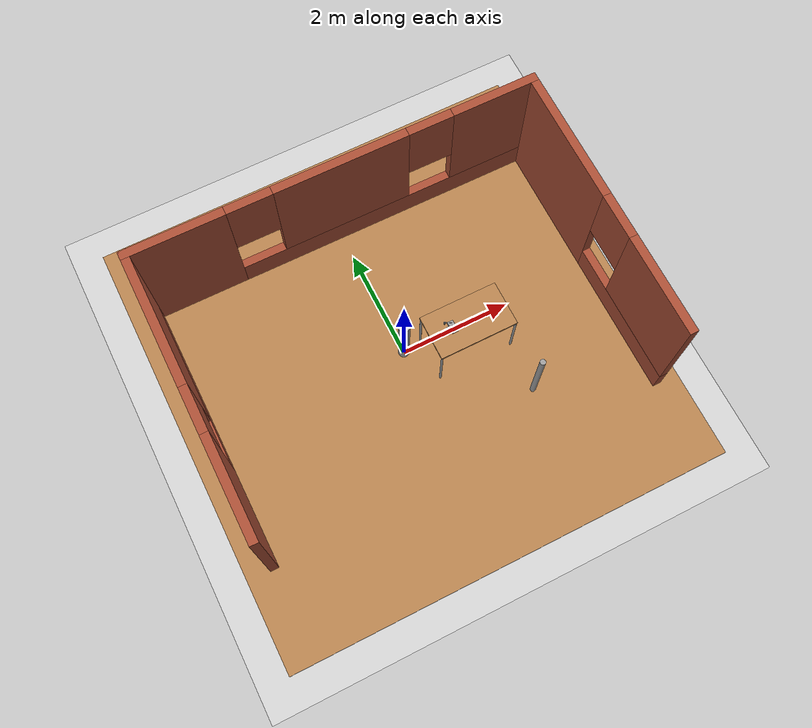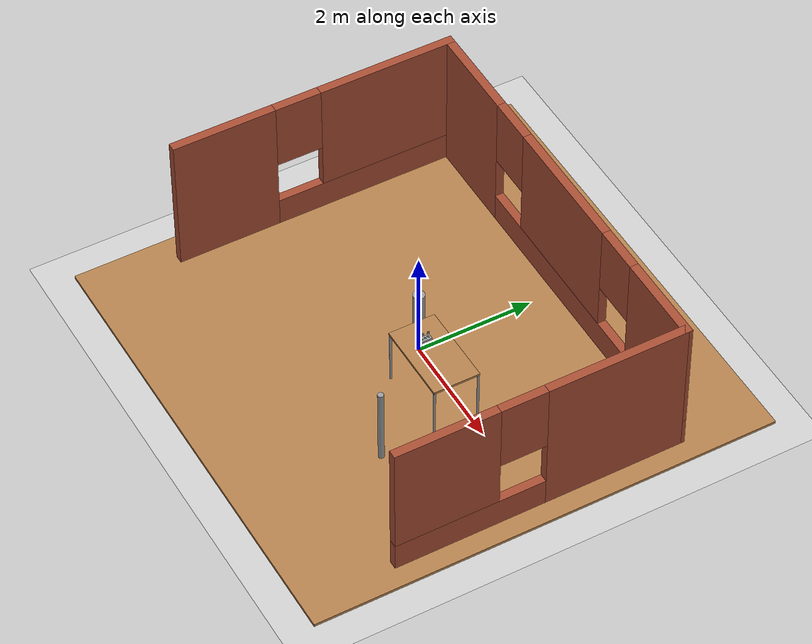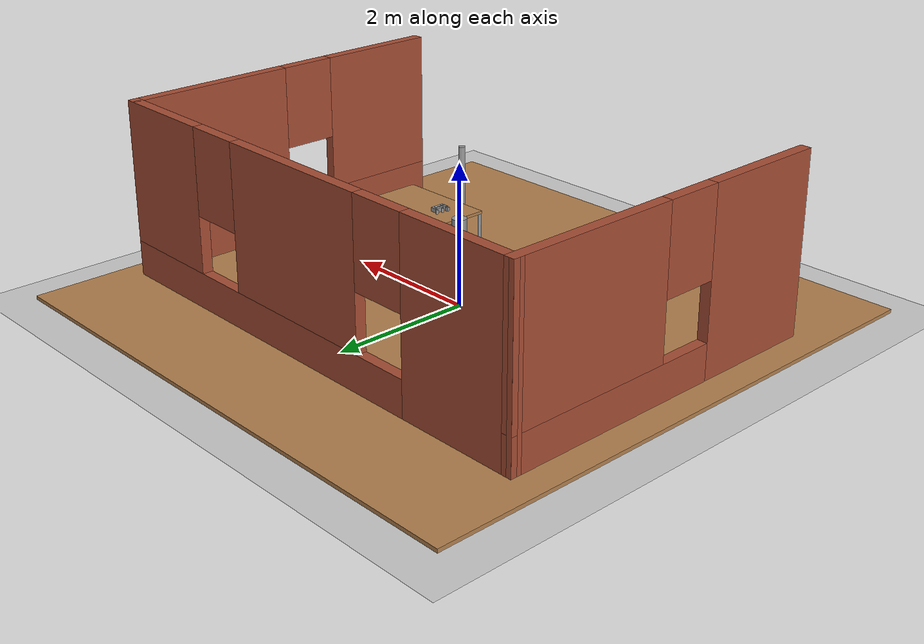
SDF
<sdf version="1.6">
 <world name="default">
  <light name="sun" type="directional">
   <pose>0 0 10 0 -0 0</pose>
   <diffuse>0.8 0.8 0.8 1</diffuse>
   <specular>0.1 0.1 0.1 1</specular>
   <attenuation>
    <range>1000</range>
    <constant>0.9</constant>
    <linear>0.01</linear>
    <quadratic>0.001</quadratic>
   </attenuation>
   <direction>-0.5 0.5 -1</direction>
  </light>
  <model name="ground_plane">
   <static>1</static>
   <link name="link">
    <collision name="collision">
     <geometry><plane><normal>0 0 1</normal><size>100 100</size></plane></geometry>
     <surface><friction><ode><mu>100</mu><mu2>50</mu2></ode></friction></surface>
    </collision>
    <visual name="visual">
     <cast_shadows>0</cast_shadows>
     <geometry><plane><normal>0 0 1</normal><size>100 100</size></plane></geometry>
     <material>
      <script><uri>file://media/materials/scripts/gazebo.material</uri><name>Gazebo/Grey</name></script>
     </material>
    </visual>
   </link>
  </model>
  <gravity>0 0 -9.8</gravity>
  <magnetic_field>6e-06 2.3e-05 -4.2e-05</magnetic_field>
  <atmosphere type="adiabatic"/>
  <physics name="default_physics" default="0" type="ode">
   <max_step_size>0.001</max_step_size>
   <real_time_factor>1</real_time_factor>
   <real_time_update_rate>1000</real_time_update_rate>
  </physics>
  <scene><ambient>0.4 0.4 0.4 1</ambient><background>0.7 0.7 0.7 1</background><shadows>1</shadows></scene>
  <spherical_coordinates>
   <surface_model>EARTH_WGS84</surface_model>
   <latitude_deg>0</latitude_deg>
   <longitude_deg>0</longitude_deg>
   <elevation>0</elevation>
   <heading_deg>0</heading_deg>
  </spherical_coordinates>
  <model name="floor">
   <link name="link">
    <pose>0 0 0.025 0 -0 0</pose>
    <inertial>
     <mass>80</mass>
     <inertia><ixx>1</ixx><ixy>0</ixy><ixz>0</ixz><iyy>1</iyy><iyz>0</iyz><izz>1</izz></inertia>
    </inertial>
    <visual name="visual">
     <geometry><box><size>8 8 0.05</size></box></geometry>
     <material>
      <script><uri>file://media/materials/scripts/gazebo.material</uri><name>Gazebo/Wood</name></script>
      <ambient>1 1 1 1</ambient>
      <diffuse>1 1 1 1</diffuse>
      <specular>0.2 0.2 0.2 1</specular>
      <emissive>0 0 0 1</emissive>
      <shader type="vertex"><normal_map>__default__</normal_map></shader>
     </material>
    </visual>
    <collision name="collision">
     <geometry><box><size>8 8 0.05</size></box></geometry>
     <surface>
      <friction>
       <ode><mu>1</mu><mu2>1</mu2><fdir1>0 0 0</fdir1><slip1>0</slip1><slip2>0</slip2></ode>
       <torsional>
        <coefficient>1</coefficient>
        <patch_radius>0</patch_radius>
        <surface_radius>0.01</surface_radius>
        <use_patch_radius>0</use_patch_radius>
        <ode><slip>0</slip></ode>
       </torsional>
      </friction>
      <bounce><restitution_coefficient>0</restitution_coefficient><threshold>1e+06</threshold></bounce>
      <contact>
       <collide_without_contact>0</collide_without_contact>
       <collide_without_contact_bitmask>1</collide_without_contact_bitmask>
       <collide_bitmask>1</collide_bitmask>
       <ode>
        <soft_cfm>0</soft_cfm>
        <soft_erp>0.2</soft_erp>
        <kp>100000</kp>
        <kd>100</kd>
        <max_vel>100</max_vel>
        <min_depth>0.001</min_depth>
       </ode>
       <bullet>
        <split_impulse>1</split_impulse>
        <split_impulse_penetration_threshold>-0.01</split_impulse_penetration_threshold>
        <soft_cfm>0</soft_cfm>
        <soft_erp>0.2</soft_erp>
        <kp>100000</kp>
        <kd>100</kd>
       </bullet>
      </contact>
     </surface>
    </collision>
   </link>
   <static>1</static>
  </model>
  <model name="workcell_building">
   <pose>0.03413 0.070717 0.05 0 -0 0</pose>
   <link name="Wall_0">
    <pose>-3.5548 0.033432 0 0 -0 1.5708</pose>
    <visual name="Wall_0_Visual_0">
     <pose>-1.60824 0 1.25 0 -0 0</pose>
     <geometry><box><size>1.78352 0.15 2.5</size></box></geometry>
     <material>
      <script><uri>file://media/materials/scripts/gazebo.material</uri><name>Gazebo/Bricks</name></script>
      <ambient>1 1 1 1</ambient>
     </material>
    </visual>
    <collision name="Wall_0_Collision_0">
     <geometry><box><size>1.78352 0.15 2.5</size></box></geometry>
     <pose>-1.60824 0 1.25 0 -0 0</pose>
    </collision>
    <visual name="Wall_0_Visual_1">
     <pose>0.891762 0 0.25 0 -0 0</pose>
     <geometry><box><size>3.21648 0.15 0.5</size></box></geometry>
     <material>
      <script><uri>file://media/materials/scripts/gazebo.material</uri><name>Gazebo/Bricks</name></script>
      <ambient>1 1 1 1</ambient>
     </material>
    </visual>
    <collision name="Wall_0_Collision_1">
     <geometry><box><size>3.21648 0.15 0.5</size></box></geometry>
     <pose>0.891762 0 0.25 0 -0 0</pose>
    </collision>
    <visual name="Wall_0_Visual_2">
     <pose>1.29176 0 1.5 0 -0 0</pose>
     <geometry><box><size>2.41648 0.15 2</size></box></geometry>
     <material>
      <script><uri>file://media/materials/scripts/gazebo.material</uri><name>Gazebo/Bricks</name></script>
      <ambient>1 1 1 1</ambient>
     </material>
    </visual>
    <collision name="Wall_0_Collision_2">
     <geometry><box><size>2.41648 0.15 2</size></box></geometry>
     <pose>1.29176 0 1.5 0 -0 0</pose>
    </collision>
    <visual name="Wall_0_Visual_3">
     <pose>-0.316476 0 1.9 0 -0 0</pose>
     <geometry><box><size>0.8 0.15 1.2</size></box></geometry>
     <material>
      <script><uri>file://media/materials/scripts/gazebo.material</uri><name>Gazebo/Bricks</name></script>
      <ambient>1 1 1 1</ambient>
     </material>
    </visual>
    <collision name="Wall_0_Collision_3">
     <geometry><box><size>0.8 0.15 1.2</size></box></geometry>
     <pose>-0.316476 0 1.9 0 -0 0</pose>
    </collision>
   </link>
   <link name="Wall_1">
    <pose>0 2.43809 0 0 0 -0.005723</pose>
    <visual name="Wall_1_Visual_0">
     <pose>-2.75725 0 1.25 0 -0 0</pose>
     <geometry><box><size>1.74511 0.15 2.5</size></box></geometry>
     <material>
      <script><uri>file://media/materials/scripts/gazebo.material</uri><name>Gazebo/Bricks</name></script>
      <ambient>1 1 1 1</ambient>
     </material>
    </visual>
    <collision name="Wall_1_Collision_0">
     <geometry><box><size>1.74511 0.15 2.5</size></box></geometry>
     <pose>-2.75725 0 1.25 0 -0 0</pose>
    </collision>
    <visual name="Wall_1_Visual_1">
     <pose>0.872557 0 0.25 0 -0 0</pose>
     <geometry><box><size>5.5145 0.15 0.5</size></box></geometry>
     <material>
      <script><uri>file://media/materials/scripts/gazebo.material</uri><name>Gazebo/Bricks</name></script>
      <ambient>1 1 1 1</ambient>
     </material>
    </visual>
    <collision name="Wall_1_Collision_1">
     <geometry><box><size>5.5145 0.15 0.5</size></box></geometry>
     <pose>0.872557 0 0.25 0 -0 0</pose>
    </collision>
    <visual name="Wall_1_Visual_2">
     <pose>0.098372 0 1.5 0 -0 0</pose>
     <geometry><box><size>2.36613 0.15 2</size></box></geometry>
     <material>
      <script><uri>file://media/materials/scripts/gazebo.material</uri><name>Gazebo/Bricks</name></script>
      <ambient>1 1 1 1</ambient>
     </material>
    </visual>
    <collision name="Wall_1_Collision_2">
     <geometry><box><size>2.36613 0.15 2</size></box></geometry>
     <pose>0.098372 0 1.5 0 -0 0</pose>
    </collision>
    <visual name="Wall_1_Visual_3">
     <pose>2.85562 0 1.5 0 -0 0</pose>
     <geometry><box><size>1.54837 0.15 2</size></box></geometry>
     <material>
      <script><uri>file://media/materials/scripts/gazebo.material</uri><name>Gazebo/Bricks</name></script>
      <ambient>1 1 1 1</ambient>
     </material>
    </visual>
    <collision name="Wall_1_Collision_3">
     <geometry><box><size>1.54837 0.15 2</size></box></geometry>
     <pose>2.85562 0 1.5 0 -0 0</pose>
    </collision>
    <visual name="Wall_1_Visual_4">
     <pose>-1.4847 0 1.9 0 -0 0</pose>
     <geometry><box><size>0.8 0.15 1.2</size></box></geometry>
     <material>
      <script><uri>file://media/materials/scripts/gazebo.material</uri><name>Gazebo/Bricks</name></script>
      <ambient>1 1 1 1</ambient>
     </material>
    </visual>
    <collision name="Wall_1_Collision_4">
     <geometry><box><size>0.8 0.15 1.2</size></box></geometry>
     <pose>-1.4847 0 1.9 0 -0 0</pose>
    </collision>
    <visual name="Wall_1_Visual_5">
     <pose>1.68144 0 1.9 0 -0 0</pose>
     <geometry><box><size>0.8 0.15 1.2</size></box></geometry>
     <material>
      <script><uri>file://media/materials/scripts/gazebo.material</uri><name>Gazebo/Bricks</name></script>
      <ambient>1 1 1 1</ambient>
     </material>
    </visual>
    <collision name="Wall_1_Collision_5">
     <geometry><box><size>0.8 0.15 1.2</size></box></geometry>
     <pose>1.68144 0 1.9 0 -0 0</pose>
    </collision>
   </link>
   <link name="Wall_2">
    <pose>3.5548 -0.033859 0 0 0 -1.5708</pose>
    <visual name="Wall_2_Visual_0">
     <pose>-1.28551 0 1.25 0 -0 0</pose>
     <geometry><box><size>2.42899 0.15 2.5</size></box></geometry>
     <material>
      <script><uri>file://media/materials/scripts/gazebo.material</uri><name>Gazebo/Bricks</name></script>
      <ambient>1 1 1 1</ambient>
     </material>
    </visual>
    <collision name="Wall_2_Collision_0">
     <geometry><box><size>2.42899 0.15 2.5</size></box></geometry>
     <pose>-1.28551 0 1.25 0 -0 0</pose>
    </collision>
    <visual name="Wall_2_Visual_1">
     <pose>1.21449 0 0.25 0 -0 0</pose>
     <geometry><box><size>2.57101 0.15 0.5</size></box></geometry>
     <material>
      <script><uri>file://media/materials/scripts/gazebo.material</uri><name>Gazebo/Bricks</name></script>
      <ambient>1 1 1 1</ambient>
     </material>
    </visual>
    <collision name="Wall_2_Collision_1">
     <geometry><box><size>2.57101 0.15 0.5</size></box></geometry>
     <pose>1.21449 0 0.25 0 -0 0</pose>
    </collision>
    <visual name="Wall_2_Visual_2">
     <pose>1.61449 0 1.5 0 -0 0</pose>
     <geometry><box><size>1.77101 0.15 2</size></box></geometry>
     <material>
      <script><uri>file://media/materials/scripts/gazebo.material</uri><name>Gazebo/Bricks</name></script>
      <ambient>1 1 1 1</ambient>
     </material>
    </visual>
    <collision name="Wall_2_Collision_2">
     <geometry><box><size>1.77101 0.15 2</size></box></geometry>
     <pose>1.61449 0 1.5 0 -0 0</pose>
    </collision>
    <visual name="Wall_2_Visual_3">
     <pose>0.328986 0 1.9 0 -0 0</pose>
     <geometry><box><size>0.8 0.15 1.2</size></box></geometry>
     <material>
      <script><uri>file://media/materials/scripts/gazebo.material</uri><name>Gazebo/Bricks</name></script>
      <ambient>1 1 1 1</ambient>
     </material>
    </visual>
    <collision name="Wall_2_Collision_3">
     <geometry><box><size>0.8 0.15 1.2</size></box></geometry>
     <pose>0.328986 0 1.9 0 -0 0</pose>
    </collision>
   </link>
   <static>1</static>
  </model>
  <model name="robot_fixed_box">
   <link name="link">
    <inertial>
     <mass>30</mass>
     <inertia><ixx>1</ixx><ixy>0</ixy><ixz>0</ixz><iyy>1</iyy><iyz>0</iyz><izz>1</izz></inertia>
    </inertial>
    <visual name="visual">
     <geometry><cylinder><radius>0.1</radius><length>1.2</length></cylinder></geometry>
     <material>
      <script><name>Gazebo/Grey</name><uri>file://media/materials/scripts/gazebo.material</uri></script>
      <ambient>0.3 0.3 0.3 1</ambient>
      <diffuse>0.7 0.7 0.7 1</diffuse>
      <specular>0.01 0.01 0.01 1</specular>
      <emissive>0 0 0 1</emissive>
      <shader type="vertex"><normal_map>__default__</normal_map></shader>
     </material>
    </visual>
    <collision name="collision">
     <geometry><cylinder><radius>0.1</radius><length>1.2</length></cylinder></geometry>
     <surface>
      <friction>
       <ode><mu>1</mu><mu2>1</mu2><fdir1>0 0 0</fdir1><slip1>0</slip1><slip2>0</slip2></ode>
       <torsional>
        <coefficient>1</coefficient>
        <patch_radius>0</patch_radius>
        <surface_radius>0</surface_radius>
        <use_patch_radius>1</use_patch_radius>
        <ode><slip>0</slip></ode>
       </torsional>
      </friction>
      <bounce><restitution_coefficient>0</restitution_coefficient><threshold>1e+06</threshold></bounce>
      <contact>
       <collide_without_contact>0</collide_without_contact>
       <collide_without_contact_bitmask>1</collide_without_contact_bitmask>
       <collide_bitmask>1</collide_bitmask>
       <ode>
        <soft_cfm>0</soft_cfm>
        <soft_erp>0.2</soft_erp>
        <kp>1e+13</kp>
        <kd>1</kd>
        <max_vel>0.01</max_vel>
        <min_depth>0</min_depth>
       </ode>
       <bullet>
        <split_impulse>1</split_impulse>
        <split_impulse_penetration_threshold>-0.01</split_impulse_penetration_threshold>
        <soft_cfm>0</soft_cfm>
        <soft_erp>0.2</soft_erp>
        <kp>1e+13</kp>
        <kd>1</kd>
       </bullet>
      </contact>
     </surface>
    </collision>
   </link>
   <static>1</static>
   <pose>0 0 0.65 0 -0 0</pose>
  </model>
  <model name="table">
   <link name="link">
    <inertial>
     <inertia><ixx>1</ixx><ixy>0</ixy><ixz>0</ixz><iyy>1</iyy><iyz>0</iyz><izz>1</izz></inertia>
     <mass>1</mass>
    </inertial>
    <visual name="visual1">
     <pose>0 0 1 0 -0 0</pose>
     <geometry><box><size>1.4 0.8 0.04</size></box></geometry>
     <material>
      <script><uri>file://media/materials/scripts/gazebo.material</uri><name>Gazebo/Wood</name></script>
      <ambient>1 1 1 1</ambient>
      <diffuse>1 1 1 1</diffuse>
      <specular>0.2 0.2 0.2 1</specular>
      <emissive>0 0 0 1</emissive>
     </material>
    </visual>
    <visual name="front_left_leg">
     <pose>0.68 0.38 0.5 0 -0 0</pose>
     <geometry><cylinder><radius>0.02</radius><length>1</length></cylinder></geometry>
     <material>
      <script><uri>file://media/materials/scripts/gazebo.material</uri><name>Gazebo/Grey</name></script>
      <ambient>0.3 0.3 0.3 1</ambient>
      <diffuse>0.7 0.7 0.7 1</diffuse>
      <specular>0.01 0.01 0.01 1</specular>
      <emissive>0 0 0 1</emissive>
     </material>
    </visual>
    <visual name="front_right_leg">
     <pose>0.68 -0.38 0.5 0 -0 0</pose>
     <geometry><cylinder><radius>0.02</radius><length>1</length></cylinder></geometry>
     <material>
      <script><uri>file://media/materials/scripts/gazebo.material</uri><name>Gazebo/Grey</name></script>
      <ambient>0.3 0.3 0.3 1</ambient>
      <diffuse>0.7 0.7 0.7 1</diffuse>
      <specular>0.01 0.01 0.01 1</specular>
      <emissive>0 0 0 1</emissive>
     </material>
    </visual>
    <visual name="back_right_leg">
     <pose>-0.68 -0.38 0.5 0 -0 0</pose>
     <geometry><cylinder><radius>0.02</radius><length>1</length></cylinder></geometry>
     <material>
      <script><uri>file://media/materials/scripts/gazebo.material</uri><name>Gazebo/Grey</name></script>
      <ambient>0.3 0.3 0.3 1</ambient>
      <diffuse>0.7 0.7 0.7 1</diffuse>
      <specular>0.01 0.01 0.01 1</specular>
      <emissive>0 0 0 1</emissive>
     </material>
    </visual>
    <visual name="back_left_leg">
     <pose>-0.68 0.38 0.5 0 -0 0</pose>
     <geometry><cylinder><radius>0.02</radius><length>1</length></cylinder></geometry>
     <material>
      <script><uri>file://media/materials/scripts/gazebo.material</uri><name>Gazebo/Grey</name></script>
      <ambient>0.3 0.3 0.3 1</ambient>
      <diffuse>0.7 0.7 0.7 1</diffuse>
      <specular>0.01 0.01 0.01 1</specular>
      <emissive>0 0 0 1</emissive>
     </material>
    </visual>
    <collision name="surface">
     <pose>0 0 1 0 -0 0</pose>
     <geometry><box><size>1.5 0.8 0.03</size></box></geometry>
     <surface>
      <friction>
       <ode><mu>0.6</mu><mu2>0.6</mu2><fdir1>0 0 0</fdir1><slip1>0</slip1><slip2>0</slip2></ode>
       <torsional>
        <coefficient>1</coefficient>
        <patch_radius>0</patch_radius>
        <surface_radius>0</surface_radius>
        <use_patch_radius>1</use_patch_radius>
        <ode><slip>0</slip></ode>
       </torsional>
      </friction>
      <bounce><restitution_coefficient>0</restitution_coefficient><threshold>1e+06</threshold></bounce>
      <contact>
       <collide_without_contact>0</collide_without_contact>
       <collide_without_contact_bitmask>1</collide_without_contact_bitmask>
       <collide_bitmask>1</collide_bitmask>
       <ode>
        <soft_cfm>0</soft_cfm>
        <soft_erp>0.2</soft_erp>
        <kp>1e+13</kp>
        <kd>1</kd>
        <max_vel>0.01</max_vel>
        <min_depth>0</min_depth>
       </ode>
       <bullet>
        <split_impulse>1</split_impulse>
        <split_impulse_penetration_threshold>-0.01</split_impulse_penetration_threshold>
        <soft_cfm>0</soft_cfm>
        <soft_erp>0.2</soft_erp>
        <kp>1e+13</kp>
        <kd>1</kd>
       </bullet>
      </contact>
     </surface>
    </collision>
    <collision name="front_right_leg">
     <pose>0.68 -0.38 0.5 0 -0 0</pose>
     <geometry><cylinder><radius>0.02</radius><length>1</length></cylinder></geometry>
     <surface>
      <friction>
       <ode><mu>1</mu><mu2>1</mu2><fdir1>0 0 0</fdir1><slip1>0</slip1><slip2>0</slip2></ode>
       <torsional>
        <coefficient>1</coefficient>
        <patch_radius>0</patch_radius>
        <surface_radius>0</surface_radius>
        <use_patch_radius>1</use_patch_radius>
        <ode><slip>0</slip></ode>
       </torsional>
      </friction>
      <bounce><restitution_coefficient>0</restitution_coefficient><threshold>1e+06</threshold></bounce>
      <contact>
       <collide_without_contact>0</collide_without_contact>
       <collide_without_contact_bitmask>1</collide_without_contact_bitmask>
       <collide_bitmask>1</collide_bitmask>
       <ode>
        <soft_cfm>0</soft_cfm>
        <soft_erp>0.2</soft_erp>
        <kp>1e+13</kp>
        <kd>1</kd>
        <max_vel>0.01</max_vel>
        <min_depth>0</min_depth>
       </ode>
       <bullet>
        <split_impulse>1</split_impulse>
        <split_impulse_penetration_threshold>-0.01</split_impulse_penetration_threshold>
        <soft_cfm>0</soft_cfm>
        <soft_erp>0.2</soft_erp>
        <kp>1e+13</kp>
        <kd>1</kd>
       </bullet>
      </contact>
     </surface>
    </collision>
    <collision name="front_left_leg">
     <pose>0.68 0.38 0.5 0 -0 0</pose>
     <geometry><cylinder><radius>0.02</radius><length>1</length></cylinder></geometry>
     <surface>
      <friction>
       <ode><mu>1</mu><mu2>1</mu2><fdir1>0 0 0</fdir1><slip1>0</slip1><slip2>0</slip2></ode>
       <torsional>
        <coefficient>1</coefficient>
        <patch_radius>0</patch_radius>
        <surface_radius>0</surface_radius>
        <use_patch_radius>1</use_patch_radius>
        <ode><slip>0</slip></ode>
       </torsional>
      </friction>
      <bounce><restitution_coefficient>0</restitution_coefficient><threshold>1e+06</threshold></bounce>
      <contact>
       <collide_without_contact>0</collide_without_contact>
       <collide_without_contact_bitmask>1</collide_without_contact_bitmask>
       <collide_bitmask>1</collide_bitmask>
       <ode>
        <soft_cfm>0</soft_cfm>
        <soft_erp>0.2</soft_erp>
        <kp>1e+13</kp>
        <kd>1</kd>
        <max_vel>0.01</max_vel>
        <min_depth>0</min_depth>
       </ode>
       <bullet>
        <split_impulse>1</split_impulse>
        <split_impulse_penetration_threshold>-0.01</split_impulse_penetration_threshold>
        <soft_cfm>0</soft_cfm>
        <soft_erp>0.2</soft_erp>
        <kp>1e+13</kp>
        <kd>1</kd>
       </bullet>
      </contact>
     </surface>
    </collision>
    <collision name="back_left_leg">
     <pose>-0.68 0.38 0.5 0 -0 0</pose>
     <geometry><cylinder><radius>0.02</radius><length>1</length></cylinder></geometry>
     <surface>
      <friction>
       <ode><mu>1</mu><mu2>1</mu2><fdir1>0 0 0</fdir1><slip1>0</slip1><slip2>0</slip2></ode>
       <torsional>
        <coefficient>1</coefficient>
        <patch_radius>0</patch_radius>
        <surface_radius>0</surface_radius>
        <use_patch_radius>1</use_patch_radius>
        <ode><slip>0</slip></ode>
       </torsional>
      </friction>
      <bounce><restitution_coefficient>0</restitution_coefficient><threshold>1e+06</threshold></bounce>
      <contact>
       <collide_without_contact>0</collide_without_contact>
       <collide_without_contact_bitmask>1</collide_without_contact_bitmask>
       <collide_bitmask>1</collide_bitmask>
       <ode>
        <soft_cfm>0</soft_cfm>
        <soft_erp>0.2</soft_erp>
        <kp>1e+13</kp>
        <kd>1</kd>
        <max_vel>0.01</max_vel>
        <min_depth>0</min_depth>
       </ode>
       <bullet>
        <split_impulse>1</split_impulse>
        <split_impulse_penetration_threshold>-0.01</split_impulse_penetration_threshold>
        <soft_cfm>0</soft_cfm>
        <soft_erp>0.2</soft_erp>
        <kp>1e+13</kp>
        <kd>1</kd>
       </bullet>
      </contact>
     </surface>
    </collision>
    <collision name="back_right_leg">
     <pose>-0.68 -0.38 0.5 0 -0 0</pose>
     <geometry><cylinder><radius>0.02</radius><length>1</length></cylinder></geometry>
     <surface>
      <friction>
       <ode><mu>1</mu><mu2>1</mu2><fdir1>0 0 0</fdir1><slip1>0</slip1><slip2>0</slip2></ode>
       <torsional>
        <coefficient>1</coefficient>
        <patch_radius>0</patch_radius>
        <surface_radius>0</surface_radius>
        <use_patch_radius>1</use_patch_radius>
        <ode><slip>0</slip></ode>
       </torsional>
      </friction>
      <bounce><restitution_coefficient>0</restitution_coefficient><threshold>1e+06</threshold></bounce>
      <contact>
       <collide_without_contact>0</collide_without_contact>
       <collide_without_contact_bitmask>1</collide_without_contact_bitmask>
       <collide_bitmask>1</collide_bitmask>
       <ode>
        <soft_cfm>0</soft_cfm>
        <soft_erp>0.2</soft_erp>
        <kp>1e+13</kp>
        <kd>1</kd>
        <max_vel>0.01</max_vel>
        <min_depth>0</min_depth>
       </ode>
       <bullet>
        <split_impulse>1</split_impulse>
        <split_impulse_penetration_threshold>-0.01</split_impulse_penetration_threshold>
        <soft_cfm>0</soft_cfm>
        <soft_erp>0.2</soft_erp>
        <kp>1e+13</kp>
        <kd>1</kd>
       </bullet>
      </contact>
     </surface>
    </collision>
   </link>
   <static>1</static>
   <pose>1.02752 -0.311864 0.05 0 -0 0</pose>
  </model>
  <model name="baseplate">
   <link name="link">
    <inertial>
     <mass>1</mass>
     <inertia>
      <ixx>0.166667</ixx>
      <ixy>0</ixy>
      <ixz>0</ixz>
      <iyy>0.166667</iyy>
      <iyz>0</iyz>
      <izz>0.166667</izz>
     </inertia>
    </inertial>
    <visual name="visual">
     <geometry><mesh><uri>model://50-baseplate/meshes/baseplate.dae</uri><scale>1 1 1</scale></mesh></geometry>
     <material>
      <lighting>1</lighting>
      <script><uri>file://media/materials/scripts/gazebo.material</uri><name>Gazebo/Grey</name></script>
      <ambient>0.3 0.3 0.3 1</ambient>
      <diffuse>0.7 0.7 0.7 1</diffuse>
      <specular>0.01 0.01 0.01 1</specular>
      <emissive>0 0 0 1</emissive>
     </material>
    </visual>
    <collision name="collision">
     <geometry><mesh><uri>model://50-baseplate/meshes/baseplate.dae</uri><scale>1 1 1</scale></mesh></geometry>
     <surface>
      <friction>
       <ode><mu>1</mu><mu2>1</mu2><fdir1>0 0 0</fdir1><slip1>0</slip1><slip2>0</slip2></ode>
       <torsional>
        <coefficient>1</coefficient>
        <patch_radius>0</patch_radius>
        <surface_radius>0</surface_radius>
        <use_patch_radius>1</use_patch_radius>
        <ode><slip>0</slip></ode>
       </torsional>
      </friction>
      <bounce><restitution_coefficient>0</restitution_coefficient><threshold>1e+06</threshold></bounce>
      <contact>
       <collide_without_contact>0</collide_without_contact>
       <collide_without_contact_bitmask>1</collide_without_contact_bitmask>
       <collide_bitmask>1</collide_bitmask>
       <ode>
        <soft_cfm>0</soft_cfm>
        <soft_erp>0.2</soft_erp>
        <kp>1e+13</kp>
        <kd>1</kd>
        <max_vel>0.01</max_vel>
        <min_depth>0</min_depth>
       </ode>
       <bullet>
        <split_impulse>1</split_impulse>
        <split_impulse_penetration_threshold>-0.01</split_impulse_penetration_threshold>
        <soft_cfm>0</soft_cfm>
        <soft_erp>0.2</soft_erp>
        <kp>1e+13</kp>
        <kd>1</kd>
       </bullet>
      </contact>
     </surface>
    </collision>
   </link>
   <static>0</static>
   <pose>0.735548 -0.306439 1.095 -0 -2e-06 -1.57375</pose>
  </model>
  <model name="triangle-peg-with-3mm-gap">
   <link name="link">
    <inertial>
     <mass>1</mass>
     <inertia>
      <ixx>0.166667</ixx>
      <ixy>0</ixy>
      <ixz>0</ixz>
      <iyy>0.166667</iyy>
      <iyz>0</iyz>
      <izz>0.166667</izz>
     </inertia>
    </inertial>
    <visual name="visual">
     <geometry>
      <mesh><uri>model://50-triangle-peg-with-3mm-gap/meshes/triangle-gap-3mm.dae</uri><scale>1 1 1</scale></mesh>
     </geometry>
     <material>
      <lighting>1</lighting>
      <script><uri>file://media/materials/scripts/gazebo.material</uri><name>Gazebo/Grey</name></script>
      <ambient>0.3 0.3 0.3 1</ambient>
      <diffuse>0.7 0.7 0.7 1</diffuse>
      <specular>0.01 0.01 0.01 1</specular>
      <emissive>0 0 0 1</emissive>
     </material>
    </visual>
    <collision name="collision">
     <geometry>
      <mesh><uri>model://50-triangle-peg-with-3mm-gap/meshes/triangle-gap-3mm.dae</uri><scale>1 1 1</scale></mesh>
     </geometry>
     <surface>
      <friction>
       <ode><mu>1</mu><mu2>1</mu2><fdir1>0 0 0</fdir1><slip1>0</slip1><slip2>0</slip2></ode>
       <torsional>
        <coefficient>1</coefficient>
        <patch_radius>0</patch_radius>
        <surface_radius>0</surface_radius>
        <use_patch_radius>1</use_patch_radius>
        <ode><slip>0</slip></ode>
       </torsional>
      </friction>
      <bounce><restitution_coefficient>0</restitution_coefficient><threshold>1e+06</threshold></bounce>
      <contact>
       <collide_without_contact>0</collide_without_contact>
       <collide_without_contact_bitmask>1</collide_without_contact_bitmask>
       <collide_bitmask>1</collide_bitmask>
       <ode>
        <soft_cfm>0</soft_cfm>
        <soft_erp>0.2</soft_erp>
        <kp>1e+13</kp>
        <kd>1</kd>
        <max_vel>0.01</max_vel>
        <min_depth>0</min_depth>
       </ode>
       <bullet>
        <split_impulse>1</split_impulse>
        <split_impulse_penetration_threshold>-0.01</split_impulse_penetration_threshold>
        <soft_cfm>0</soft_cfm>
        <soft_erp>0.2</soft_erp>
        <kp>1e+13</kp>
        <kd>1</kd>
       </bullet>
      </contact>
     </surface>
    </collision>
   </link>
   <static>0</static>
   <pose>0.657739 -0.192292 1.06499 -2e-06 7e-06 -1.65299</pose>
  </model>
  <model name="50-rectangle-3mm">
   <link name="link">
    <inertial>
     <mass>1</mass>
     <inertia>
      <ixx>0.166667</ixx>
      <ixy>0</ixy>
      <ixz>0</ixz>
      <iyy>0.166667</iyy>
      <iyz>0</iyz>
      <izz>0.166667</izz>
     </inertia>
    </inertial>
    <visual name="visual">
     <geometry>
      <mesh><uri>model://50-rectangle-3mm/meshes/rectangle-3mm.dae</uri><scale>1 1 1</scale></mesh>
     </geometry>
     <material>
      <lighting>1</lighting>
      <script><uri>file://media/materials/scripts/gazebo.material</uri><name>Gazebo/Grey</name></script>
      <ambient>0.3 0.3 0.3 1</ambient>
      <diffuse>0.7 0.7 0.7 1</diffuse>
      <specular>0.01 0.01 0.01 1</specular>
      <emissive>0 0 0 1</emissive>
     </material>
    </visual>
    <collision name="collision">
     <geometry>
      <mesh><uri>model://50-rectangle-3mm/meshes/rectangle-3mm.dae</uri><scale>1 1 1</scale></mesh>
     </geometry>
     <surface>
      <friction>
       <ode><mu>1</mu><mu2>1</mu2><fdir1>0 0 0</fdir1><slip1>0</slip1><slip2>0</slip2></ode>
       <torsional>
        <coefficient>1</coefficient>
        <patch_radius>0</patch_radius>
        <surface_radius>0</surface_radius>
        <use_patch_radius>1</use_patch_radius>
        <ode><slip>0</slip></ode>
       </torsional>
      </friction>
      <bounce><restitution_coefficient>0</restitution_coefficient><threshold>1e+06</threshold></bounce>
      <contact>
       <collide_without_contact>0</collide_without_contact>
       <collide_without_contact_bitmask>1</collide_without_contact_bitmask>
       <collide_bitmask>1</collide_bitmask>
       <ode>
        <soft_cfm>0</soft_cfm>
        <soft_erp>0.2</soft_erp>
        <kp>1e+13</kp>
        <kd>1</kd>
        <max_vel>0.01</max_vel>
        <min_depth>0</min_depth>
       </ode>
       <bullet>
        <split_impulse>1</split_impulse>
        <split_impulse_penetration_threshold>-0.01</split_impulse_penetration_threshold>
        <soft_cfm>0</soft_cfm>
        <soft_erp>0.2</soft_erp>
        <kp>1e+13</kp>
        <kd>1</kd>
       </bullet>
      </contact>
     </surface>
    </collision>
   </link>
   <static>0</static>
   <pose>0.644964 -0.375487 1.06499 3e-06 -0 1.55298</pose>
  </model>
  <model name="50-cylinder-peg-gap-3mm">
   <link name="link">
    <pose>-0 -0 -4e-06 0 -0 0</pose>
    <inertial>
     <mass>1</mass>
     <inertia>
      <ixx>0.166667</ixx>
      <ixy>0</ixy>
      <ixz>0</ixz>
      <iyy>0.166667</iyy>
      <iyz>0</iyz>
      <izz>0.166667</izz>
     </inertia>
    </inertial>
    <visual name="visual">
     <geometry>
      <mesh><uri>model://50-cylinder-peg-gap-3mm/meshes/cylinder-gap-3mm.dae</uri><scale>1 1 1</scale></mesh>
     </geometry>
     <material>
      <lighting>1</lighting>
      <script><uri>file://media/materials/scripts/gazebo.material</uri><name>Gazebo/Grey</name></script>
      <ambient>0.3 0.3 0.3 1</ambient>
      <diffuse>0.7 0.7 0.7 1</diffuse>
      <specular>0.01 0.01 0.01 1</specular>
      <emissive>0 0 0 1</emissive>
     </material>
    </visual>
    <collision name="collision">
     <geometry>
      <mesh><uri>model://50-cylinder-peg-gap-3mm/meshes/cylinder-gap-3mm.dae</uri><scale>1 1 1</scale></mesh>
     </geometry>
     <surface>
      <friction>
       <ode><mu>1</mu><mu2>1</mu2><fdir1>0 0 0</fdir1><slip1>0</slip1><slip2>0</slip2></ode>
       <torsional>
        <coefficient>1</coefficient>
        <patch_radius>0</patch_radius>
        <surface_radius>0</surface_radius>
        <use_patch_radius>1</use_patch_radius>
        <ode><slip>0</slip></ode>
       </torsional>
      </friction>
      <bounce><restitution_coefficient>0</restitution_coefficient><threshold>1e+06</threshold></bounce>
      <contact>
       <collide_without_contact>0</collide_without_contact>
       <collide_without_contact_bitmask>1</collide_without_contact_bitmask>
       <collide_bitmask>1</collide_bitmask>
       <ode>
        <soft_cfm>0</soft_cfm>
        <soft_erp>0.2</soft_erp>
        <kp>1e+13</kp>
        <kd>1</kd>
        <max_vel>0.01</max_vel>
        <min_depth>0</min_depth>
       </ode>
       <bullet>
        <split_impulse>1</split_impulse>
        <split_impulse_penetration_threshold>-0.01</split_impulse_penetration_threshold>
        <soft_cfm>0</soft_cfm>
        <soft_erp>0.2</soft_erp>
        <kp>1e+13</kp>
        <kd>1</kd>
       </bullet>
      </contact>
     </surface>
    </collision>
   </link>
   <static>0</static>
   <pose>0.645755 -0.294482 1.065 4e-06 -5e-06 1.58058</pose>
  </model>
  <model name="kinect_fixed_box">
   <link name="link">
    <inertial>
     <mass>20</mass>
     <inertia><ixx>1</ixx><ixy>0</ixy><ixz>0</ixz><iyy>1</iyy><iyz>0</iyz><izz>1</izz></inertia>
    </inertial>
    <visual name="visual">
     <geometry><cylinder><radius>0.05</radius><length>1.4</length></cylinder></geometry>
     <material>
      <script><name>Gazebo/Grey</name><uri>file://media/materials/scripts/gazebo.material</uri></script>
      <ambient>0.3 0.3 0.3 1</ambient>
      <diffuse>0.7 0.7 0.7 1</diffuse>
      <specular>0.01 0.01 0.01 1</specular>
      <emissive>0 0 0 1</emissive>
      <shader type="vertex"><normal_map>__default__</normal_map></shader>
     </material>
    </visual>
    <collision name="collision">
     <geometry><cylinder><radius>0.05</radius><length>1.4</length></cylinder></geometry>
     <surface>
      <friction>
       <ode><mu>1</mu><mu2>1</mu2><fdir1>0 0 0</fdir1><slip1>0</slip1><slip2>0</slip2></ode>
       <torsional>
        <coefficient>1</coefficient>
        <patch_radius>0</patch_radius>
        <surface_radius>0</surface_radius>
        <use_patch_radius>1</use_patch_radius>
        <ode><slip>0</slip></ode>
       </torsional>
      </friction>
      <bounce><restitution_coefficient>0</restitution_coefficient><threshold>1e+06</threshold></bounce>
      <contact>
       <collide_without_contact>0</collide_without_contact>
       <collide_without_contact_bitmask>1</collide_without_contact_bitmask>
       <collide_bitmask>1</collide_bitmask>
       <ode>
        <soft_cfm>0</soft_cfm>
        <soft_erp>0.2</soft_erp>
        <kp>1e+13</kp>
        <kd>1</kd>
        <max_vel>0.01</max_vel>
        <min_depth>0</min_depth>
       </ode>
       <bullet>
        <split_impulse>1</split_impulse>
        <split_impulse_penetration_threshold>-0.01</split_impulse_penetration_threshold>
        <soft_cfm>0</soft_cfm>
        <soft_erp>0.2</soft_erp>
        <kp>1e+13</kp>
        <kd>1</kd>
       </bullet>
      </contact>
     </surface>
    </collision>
   </link>
   <static>1</static>
   <pose>1.65954 -1.58601 0.75 0 -0 0</pose>
  </model>
 </world>
</sdf>
